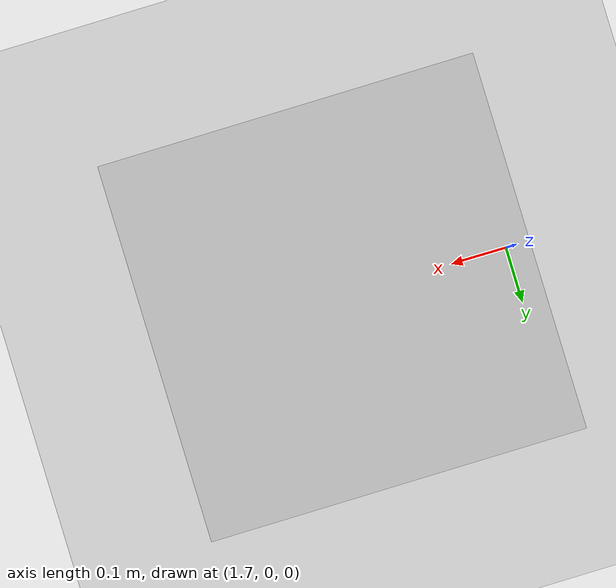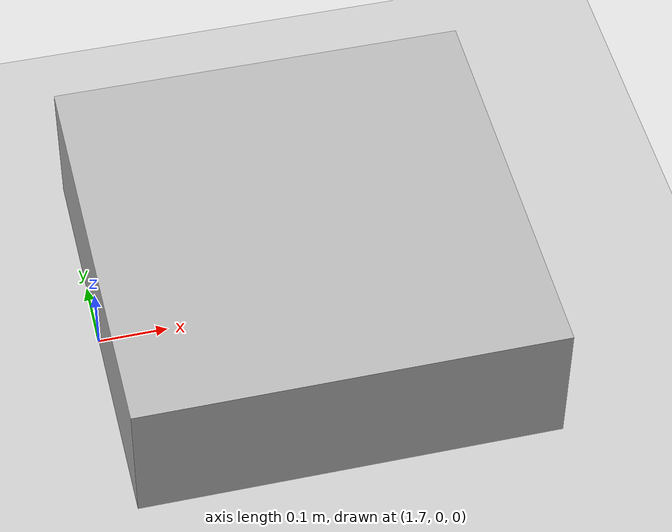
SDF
<?xml version="1.0" ?>
<sdf version="1.5">
  <world name="default">
    <!-- A global light source -->
    <include>
      <uri>model://sun</uri>
    </include>
    <!-- A ground plane -->
    <include>
      <uri>model://ground_plane</uri>
    </include>

<model name='box_target'>
      <link name='link'>
        <self_collide>0</self_collide>
        <enable_wind>0</enable_wind>
        <kinematic>0</kinematic>
        <pose frame=''>0 0 0 0 -0 0</pose>
        <gravity>0</gravity>
        <inertial>
          <mass>1000000000</mass>
          <pose frame=''>0 0 0 0 -0 0</pose>
          <inertia>
            <ixx>1</ixx>
            <ixy>0</ixy>
            <ixz>0</ixz>
            <iyy>1</iyy>
            <iyz>0</iyz>
            <izz>1</izz>
          </inertia>
        </inertial>
        <visual name='visual'>
          <geometry>
            <mesh>
              <uri>model://box_target_green/meshes/mesh.dae</uri>
              <scale>0.1 0.1 0.1</scale>
            </mesh>
          </geometry>
          <pose frame=''>0 0 0 0 -0 0</pose>
          <transparency>0</transparency>
          <cast_shadows>1</cast_shadows>
          <material>
            <shader type='vertex'>
              <normal_map>__default__</normal_map>
            </shader>
          </material>
        </visual>
<collision name='collision'>
          <laser_retro>0</laser_retro>
          <max_contacts>10</max_contacts>
          <pose frame=''>0 0 0 0 -0 0</pose>
          <geometry>
            <box>
              <size>0.6 0.6 0.2</size>
            </box>
          </geometry>
          <surface>
            <friction>
              <ode>
                <mu>2</mu>
                <mu2>2</mu2>
                <fdir1>0 0 0</fdir1>
                <slip1>0</slip1>
                <slip2>0</slip2>
              </ode>
              <torsional>
                <coefficient>1</coefficient>
                <patch_radius>0</patch_radius>
                <surface_radius>0</surface_radius>
                <use_patch_radius>1</use_patch_radius>
                <ode>
                  <slip>0</slip>
                </ode>
              </torsional>
            </friction>
            <bounce>
              <restitution_coefficient>0</restitution_coefficient>
              <threshold>1e+06</threshold>
            </bounce>
            <contact>
              <collide_without_contact>0</collide_without_contact>
              <collide_without_contact_bitmask>1</collide_without_contact_bitmask>
              <collide_bitmask>1</collide_bitmask>
              <ode>
                <soft_cfm>0</soft_cfm>
                <soft_erp>0.2</soft_erp>
                <kp>1e+13</kp>
                <kd>1</kd>
                <max_vel>0</max_vel>
                <min_depth>0</min_depth>
              </ode>
              <bullet>
                <split_impulse>1</split_impulse>
                <split_impulse_penetration_threshold>-0.01</split_impulse_penetration_threshold>
                <soft_cfm>0</soft_cfm>
                <soft_erp>0.2</soft_erp>
                <kp>1e+13</kp>
                <kd>1</kd>
              </bullet>
            </contact>
          </surface>
        </collision>
      </link>
      <static>0</static>
      <allow_auto_disable>1</allow_auto_disable>
      <pose frame=''>2 0 0.1 0 0 0</pose>
 </model>

    <physics name='default_physics' default='0' type='ode'>
      <gravity>0 0 -9.8066</gravity>
      <ode>
        <solver>
          <type>quick</type>
          <iters>10</iters>
          <sor>1.3</sor>
          <use_dynamic_moi_rescaling>0</use_dynamic_moi_rescaling>
        </solver>
        <constraints>
          <cfm>0</cfm>
          <erp>0.2</erp>
          <contact_max_correcting_vel>100</contact_max_correcting_vel>
          <contact_surface_layer>0.001</contact_surface_layer>
        </constraints>
      </ode>
      <max_step_size>0.002</max_step_size>
      <real_time_factor>1</real_time_factor>
      <real_time_update_rate>500</real_time_update_rate>
      <magnetic_field>6e-06 2.3e-05 -4.2e-05</magnetic_field>
    </physics>
  </world>
</sdf>
